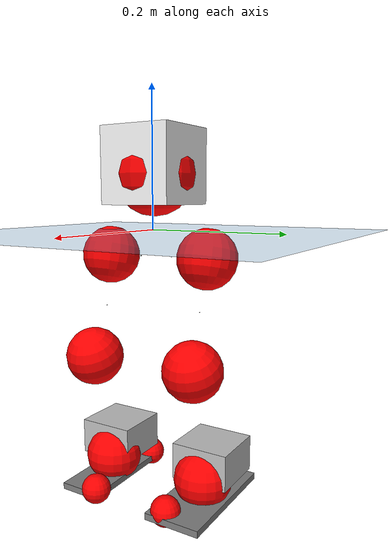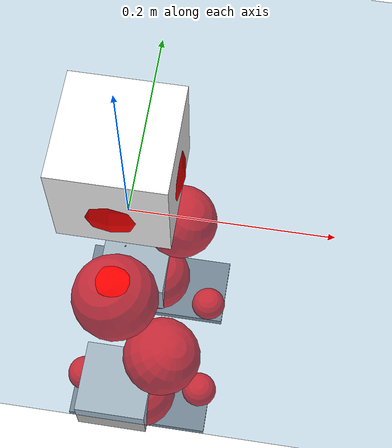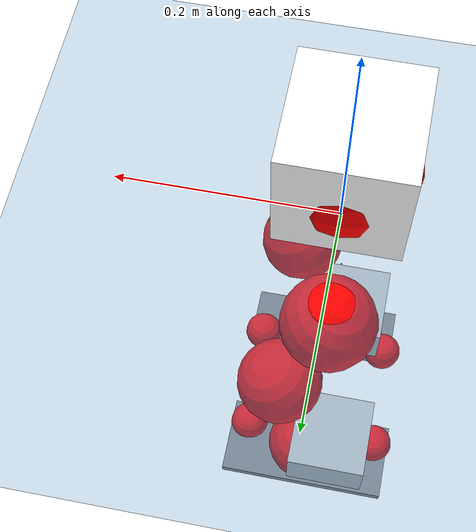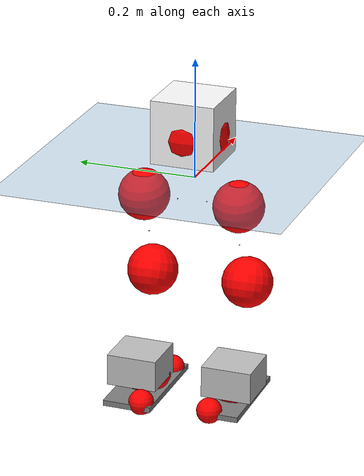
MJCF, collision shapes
<mujoco model="pi_12dof_release_v1">
  <compiler angle="radian" assetdir="assets" balanceinertia="true" inertiafromgeom="false"/>

  <option timestep="0.005" density="1.2" viscosity="2e-05"/>

  <size nkey="1"/>

  <visual>
    <quality shadowsize="8192"/>
    <map shadowclip="0.5"/>
  </visual>

  <default>
    <default class="/">
      <joint armature="0.01" damping="0.01" frictionloss="0.01"/>
      <geom contype="0" conaffinity="0" group="1" solref="-1000 -80"/>
      <site size="0.01 0.005 0.005" group="5"/>
      <general forcelimited="true" biastype="affine" gainprm="20" biasprm="0 -20 -0.5"/>
      <default class="foot">
        <geom size="0.0845 0.036 0.005" type="box" condim="6" group="4" priority="1" friction="0.9 0.2 0.2" solimp="0.015 1 0.005"/>
      </default>
      <default class="reward_collision_sphere">
        <geom group="5" rgba="1 0 0 1"/>
      </default>
    </default>
  </default>

  <asset>
    <texture type="skybox" colorspace="auto" name="//unnamed_texture_0" builtin="gradient" rgb1="0.95 0.95 0.95" rgb2="0.95 0.95 0.95" width="100" height="600"/>
    <texture type="2d" colorspace="auto" name="texplane" builtin="checker" rgb1="0.345 0.575 0.748" rgb2="0.345 0.575 0.748" markrgb="1 1 1" width="512" height="512"/>
    <material name="MatPlane" class="/" texture="texplane" texuniform="true" texrepeat="2 2" specular="0.9"/>
    <mesh name="baselink_1" class="/" file="baselink_1.STL"/>
    <mesh name="r_hip_pitch_link" class="/" file="r_hip_pitch_link.STL"/>
    <mesh name="r_hip_roll_link" class="/" file="r_hip_roll_link.STL"/>
    <mesh name="r_thigh_link" class="/" file="r_thigh_link.STL"/>
    <mesh name="r_calf_link" class="/" file="r_calf_link.STL"/>
    <mesh name="r_ankle_pitch_link" class="/" file="r_ankle_pitch_link.STL"/>
    <mesh name="r_ankle_roll_link" class="/" file="r_ankle_roll_link.STL"/>
    <mesh name="l_hip_pitch_link" class="/" file="l_hip_pitch_link.STL"/>
    <mesh name="l_hip_roll_link" class="/" file="l_hip_roll_link.STL"/>
    <mesh name="l_thigh_link" class="/" file="l_thigh_link.STL"/>
    <mesh name="l_calf_link" class="/" file="l_calf_link.STL"/>
    <mesh name="l_ankle_pitch_link" class="/" file="l_ankle_pitch_link.STL"/>
    <mesh name="l_ankle_roll_link" class="/" file="l_ankle_roll_link.STL"/>
  </asset>

  <worldbody>
    <geom name="floor" class="/" size="100 100 0.125" type="plane" group="0" material="MatPlane"/>
    <light name="toplight_shadow" class="/" pos="0 0 5" dir="0.0990148 0.0990148 -0.990148" type="directional" ambient="0.04 0.04 0.04" diffuse="0.55 0.55 0.55" specular="0.12 0.12 0.12"/>
    <light name="toplight_fill" class="/" pos="0 0 5" dir="0.0990148 0.0990148 -0.990148" type="directional" castshadow="false" ambient="0.04 0.04 0.04" diffuse="0.3 0.3 0.3" specular="0.08 0.08 0.08"/>
    <body name="trunk" pos="-0.00203483 0.00238884 -0.000617475" quat="0.999999 0.00058283 0.00010253 -0.00110169">
      <inertial pos="0.00196731 -0.00348245 0.0452306" quat="0.699026 0.012179 0.0148257 0.714839" mass="2.69519" diaginertia="0.0138545 0.00915358 0.0071961"/>
      <joint name="//unnamed_joint_0" type="free"/>
      <geom name="//unnamed_geom_1" class="/" type="mesh" density="0" rgba="1 1 1 1" mesh="baselink_1"/>
      <geom name="//unnamed_geom_2" class="/" size="0.0533869 0.0533869 0.0533869" pos="0 0 0.0894407" type="box" rgba="1 1 1 1"/>
      <geom name="//unnamed_geom_3" class="reward_collision_sphere" size="0.0587256" pos="0 0 0.0782606"/>
      <site name="imu" class="/" pos="0.0128679 -0.00853198 0.0167383" size="0.0106774"/>
      <camera name="track" class="/" pos="0 -2.0085 0" quat="0.707107 0.707107 0 0" mode="trackcom"/>
      <camera name="ego_camera" class="/" pos="0.0810714 0 0.201242" quat="-0.5 -0.5 0.5 0.5"/>
      <body name="r_hip_pitch_link" pos="0.000966788 -0.0236885 -0.0378789" quat="0.992174 0.000329936 -0.124864 -0.000622309">
        <inertial pos="0.00385354 -0.0583572 -0.000292989" quat="-0.0208639 0.704842 -0.0312334 0.708369" mass="0.438157" diaginertia="0.000155936 0.000100388 0.00014278"/>
        <joint name="r_hip_pitch_joint" class="/" pos="0 0 0" axis="-0.00242755 -0.999972 0.00703118" range="-1.80589 1.26077" armature="0.0106753" damping="0" frictionloss="0.0108279"/>
        <geom name="//unnamed_geom_4" class="/" type="mesh" density="0" rgba="0.75294 0.75294 0.75294 1" mesh="r_hip_pitch_link"/>
        <geom name="//unnamed_geom_5" class="/" size="0.000533869 0.000533869 0.000533869" type="box" rgba="0.75294 0.75294 0.75294 1"/>
        <body name="r_hip_roll_link" pos="-0.000378945 -0.0548663 -0.00103975" quat="0.999999 0.00024959 0.000277356 0.00104814">
          <inertial pos="-0.00164227 0.00128836 -0.0641277" quat="0.70746 -0.0708968 -0.0770533 0.698954" mass="0.458562" diaginertia="0.000474814 0.000275921 0.000218511"/>
          <joint name="r_hip_roll_joint" class="/" pos="0 0 0" axis="-0.999986 0.00513666 -0.000784712" range="-0.0849364 0.461059" armature="0.011823" damping="0.00194347" frictionloss="0.0106741"/>
          <geom name="//unnamed_geom_6" class="/" type="mesh" density="0" rgba="0.75294 0.75294 0.75294 1" mesh="r_hip_roll_link"/>
          <geom name="//unnamed_geom_7" class="/" size="0.000533869 0.000533869 0.000533869" type="box" rgba="0.75294 0.75294 0.75294 1"/>
          <geom name="//unnamed_geom_8" class="reward_collision_sphere" size="0.0427095"/>
          <body name="r_thigh_link" pos="-0.000529007 0.00421762 -0.0768056" quat="1 1.72006e-05 -2.24247e-05 3.0736e-05">
            <inertial pos="0.0021203 -0.00185982 -0.0529637" quat="0.731166 0.682115 0.00207077 0.0105371" mass="0.140895" diaginertia="0.00018772 9.71145e-05 0.000104217"/>
            <joint name="r_thigh_joint" class="/" pos="0 0 0" axis="-0.00700725 0.00119756 -0.999975" stiffness="0.0224871" range="-0.300309 0.53058" armature="0.0103698" damping="0.00593698" frictionloss="0.00959062"/>
            <geom name="//unnamed_geom_9" class="/" type="mesh" density="0" rgba="0.75294 0.75294 0.75294 1" mesh="r_thigh_link"/>
            <geom name="//unnamed_geom_10" class="/" size="0.000533869 0.000533869 0.000533869" type="box" rgba="0.75294 0.75294 0.75294 1"/>
            <body name="r_calf_link" pos="0.00398775 -0.00672414 -0.0773656" quat="0.947628 -0.000200045 0.319377 -0.000175587">
              <inertial pos="-0.00378586 0.00189326 -0.0753499" quat="0.999964 -0.00687828 -0.00305363 0.00389685" mass="0.973309" diaginertia="0.0049745 0.00340939 0.000292036"/>
              <joint name="r_calf_joint" class="/" pos="0 0 0" axis="0.0160757 -0.999837 0.00819631" range="-1.66946 0.64244" armature="0.0115458" damping="0" frictionloss="0.00960851"/>
              <geom name="//unnamed_geom_11" class="/" type="mesh" density="0" rgba="0.75294 0.75294 0.75294 1" mesh="r_calf_link"/>
              <geom name="//unnamed_geom_12" class="/" size="0.000533869 0.000533869 0.000533869" type="box" rgba="0.75294 0.75294 0.75294 1"/>
              <geom name="//unnamed_geom_13" class="reward_collision_sphere" size="0.0427095"/>
              <body name="r_ankle_pitch_link" pos="0.000571827 0.000804851 -0.155592" quat="0.980075 -4.80882e-05 -0.198629 -0.000133852">
                <inertial pos="0.00340906 -0.00110614 0.00219922" quat="0.00264443 0.707177 -0.00277742 0.707026" mass="0.220883" diaginertia="0.000453921 0.000239553 0.000216053"/>
                <joint name="r_ankle_pitch_joint" class="/" pos="0 0 0" axis="0.000721973 -0.999992 -0.00388428" range="-1.25206 0.507789" armature="0.011332" damping="0.0176917" frictionloss="0.0106214"/>
                <geom name="//unnamed_geom_14" class="/" type="mesh" density="0" rgba="0.75294 0.75294 0.75294 1" mesh="r_ankle_pitch_link"/>
                <geom name="//unnamed_geom_15" class="/" size="0.0416418 0.0427095 0.0266934" type="box" rgba="0.75294 0.75294 0.75294 1"/>
                <body name="r_ankle_roll_link" pos="0.0808383 0.00577797 -0.0016283" quat="0.999998 -0.00135611 5.90054e-05 0.0012422">
                  <inertial pos="-0.0304034 -0.000463132 -0.0174157" quat="0.565135 0.431755 0.437436 0.550327" mass="0.626386" diaginertia="0.00166645 0.00100881 0.000460871"/>
                  <joint name="r_ankle_roll_joint" class="/" pos="0 0 0" axis="-0.99982 -0.0156886 -0.0107061" range="-0.162146 0.115479" armature="0.0120561" damping="0" frictionloss="0.00964584"/>
                  <geom name="//unnamed_geom_16" class="/" type="mesh" density="0" rgba="0.75294 0.75294 0.75294 1" mesh="r_ankle_roll_link"/>
                  <geom name="//unnamed_geom_17" class="/" type="mesh" rgba="0.75294 0.75294 0.75294 1" mesh="r_ankle_roll_link"/>
                  <geom name="right_foot" class="foot" size="0.0844772 0.0321546 0.00467098" pos="-0.0551286 0 -0.0491924"/>
                  <geom name="//unnamed_geom_19" class="reward_collision_sphere" size="0.0427095" pos="-0.0540476 0 -0.0223602"/>
                  <geom name="//unnamed_geom_20" class="reward_collision_sphere" size="0.0213548" pos="0.0162143 0.020085 -0.0447203"/>
                  <geom name="//unnamed_geom_21" class="reward_collision_sphere" size="0.0213548" pos="-0.129714 0.020085 -0.0447203"/>
                  <site name="right_foot" class="foot" pos="-0.0551286 0 -0.0491924" size="0.0106774"/>
                </body>
              </body>
            </body>
          </body>
        </body>
      </body>
      <body name="l_hip_pitch_link" pos="-0.00529845 0.0243749 -0.0375605" quat="0.99224 -0.000154931 -0.124335 -0.000968785">
        <inertial pos="-0.00207422 0.0589745 -0.000417054" quat="-0.0444504 0.701613 0.0323878 0.710433" mass="0.467304" diaginertia="0.000185038 0.000108524 0.000180865"/>
        <joint name="l_hip_pitch_joint" class="/" pos="0 0 0" axis="0.0232783 0.999705 -0.00694096" stiffness="0.0155177" range="-1.19597 1.79312" armature="0.0124473" damping="0.0295307" frictionloss="0.0116864"/>
        <geom name="//unnamed_geom_22" class="/" type="mesh" density="0" rgba="0.75294 0.75294 0.75294 1" mesh="l_hip_pitch_link"/>
        <geom name="//unnamed_geom_23" class="/" size="0.000533869 0.000533869 0.000533869" type="box" rgba="0.75294 0.75294 0.75294 1"/>
        <body name="l_hip_roll_link" pos="0.00135942 0.0587541 -0.000406589" quat="0.999999 5.21706e-05 0.00122106 -6.61892e-05">
          <inertial pos="0.00151406 -0.00318564 -0.0682579" quat="0.701009 -0.0746758 -0.0779055 0.70494" mass="0.487114" diaginertia="0.000489113 0.000284958 0.000236123"/>
          <joint name="l_hip_roll_joint" class="/" pos="0 0 0" axis="-0.999974 0.00702318 0.00154398" range="-0.536406 0.153288" armature="0.0100192" damping="0.00124913" frictionloss="0.0099807"/>
          <geom name="//unnamed_geom_24" class="/" type="mesh" density="0" rgba="0.75294 0.75294 0.75294 1" mesh="l_hip_roll_link"/>
          <geom name="//unnamed_geom_25" class="/" size="0.000533869 0.000533869 0.000533869" type="box" rgba="0.75294 0.75294 0.75294 1"/>
          <geom name="//unnamed_geom_26" class="reward_collision_sphere" size="0.0427095"/>
          <body name="l_thigh_link" pos="-0.000828292 -0.00156391 -0.0732786" quat="0.999998 -0.000288646 -0.00185697 0.000805913">
            <inertial pos="0.0024409 -0.00127554 -0.0579378" quat="0.671989 0.740536 -0.0028221 -0.00539973" mass="0.139824" diaginertia="0.000183684 9.31893e-05 9.95013e-05"/>
            <joint name="l_thigh_joint" class="/" pos="0 0 0" axis="0.0111086 -0.00534712 -0.999924" range="-0.541484 0.26588" armature="0.0101835" damping="0.0111872" frictionloss="0.0112506"/>
            <geom name="//unnamed_geom_27" class="/" type="mesh" density="0" rgba="0.75294 0.75294 0.75294 1" mesh="l_thigh_link"/>
            <geom name="//unnamed_geom_28" class="/" size="0.000533869 0.000533869 0.000533869" type="box" rgba="0.75294 0.75294 0.75294 1"/>
            <body name="l_calf_link" pos="0.00288855 0.0022561 -0.0812114" quat="0.947896 0.000876665 0.318578 0.000467769">
              <inertial pos="0.000427308 0.00524436 -0.0770417" quat="0.999873 0.0143886 -0.00254299 -0.00630053" mass="0.967619" diaginertia="0.00513709 0.00350587 0.000299978"/>
              <joint name="l_calf_joint" class="/" pos="0 0 0" axis="-0.00371823 0.999949 0.00942161" stiffness="0.00143904" range="-0.644312 1.69952" armature="0.0102999" damping="0.0111411" frictionloss="0.011339"/>
              <geom name="//unnamed_geom_29" class="/" type="mesh" density="0" rgba="0.75294 0.75294 0.75294 1" mesh="l_calf_link"/>
              <geom name="//unnamed_geom_30" class="/" size="0.000533869 0.000533869 0.000533869" type="box" rgba="0.75294 0.75294 0.75294 1"/>
              <geom name="//unnamed_geom_31" class="reward_collision_sphere" size="0.0427095"/>
              <body name="l_ankle_pitch_link" pos="0.00211527 -0.000348706 -0.158952" quat="0.980294 -0.000157599 -0.197546 -0.000457633">
                <inertial pos="0.00815207 -0.00137989 0.00240562" quat="-0.00728023 0.692681 -0.00183702 0.721205" mass="0.205233" diaginertia="0.000449677 0.000220919 0.000195758"/>
                <joint name="l_ankle_pitch_joint" class="/" pos="0 0 0" axis="0.0124636 0.999922 0.000345417" stiffness="0.00966897" range="-0.496522 1.3179" armature="0.00916564" damping="0.0127913" frictionloss="0.0118734"/>
                <geom name="//unnamed_geom_32" class="/" type="mesh" density="0" rgba="0.75294 0.75294 0.75294 1" mesh="l_ankle_pitch_link"/>
                <geom name="//unnamed_geom_33" class="/" size="0.0416418 0.0427095 0.0266934" type="box" rgba="0.75294 0.75294 0.75294 1"/>
                <body name="l_ankle_roll_link" pos="0.0804911 -0.000520179 -0.000666821" quat="1 -0.000153181 -5.44767e-05 0.000276635">
                  <inertial pos="-0.0239154 0.00396729 -0.0191293" quat="0.559427 0.432141 0.43451 0.558118" mass="0.612331" diaginertia="0.00163653 0.00101829 0.00048684"/>
                  <joint name="l_ankle_roll_joint" class="/" pos="0 0 0" axis="-0.999907 0.0136417 -0.000322541" range="-0.107127 0.135783" armature="0.0116781" damping="0" frictionloss="0.00969673"/>
                  <geom name="//unnamed_geom_34" class="/" type="mesh" density="0" rgba="0.75294 0.75294 0.75294 1" mesh="l_ankle_roll_link"/>
                  <geom name="//unnamed_geom_35" class="/" type="mesh" rgba="0.75294 0.75294 0.75294 1" mesh="l_ankle_roll_link"/>
                  <geom name="left_foot" class="foot" size="0.0912545 0.0414434 0.00478622" pos="-0.0551286 0 -0.0491924"/>
                  <geom name="//unnamed_geom_37" class="reward_collision_sphere" size="0.0427095" pos="-0.0540476 0 -0.0223602"/>
                  <geom name="//unnamed_geom_38" class="reward_collision_sphere" size="0.0213548" pos="0.0162143 -0.020085 -0.0447203"/>
                  <geom name="//unnamed_geom_39" class="reward_collision_sphere" size="0.0213548" pos="-0.129714 -0.020085 -0.0447203"/>
                  <site name="left_foot" class="foot" pos="-0.0551286 0 -0.0491924" size="0.0106774"/>
                </body>
              </body>
            </body>
          </body>
        </body>
      </body>
    </body>
  </worldbody>

  <contact>
    <pair class="/" geom1="floor" geom2="right_foot" name="//unnamed_contact_1"/>
    <pair class="/" geom1="floor" geom2="left_foot" name="//unnamed_contact_0"/>
  </contact>

  <actuator>
    <general name="r_hip_pitch_joint" class="/" joint="r_hip_pitch_joint" forcerange="-24.3098 24.3098" gainprm="22.0446" biasprm="0 -22.0446 -0.515576"/>
    <general name="r_hip_roll_joint" class="/" joint="r_hip_roll_joint" forcerange="-20.4243 20.4243" gainprm="22.0446" biasprm="0 -22.0446 -0.515576"/>
    <general name="r_thigh_joint" class="/" joint="r_thigh_joint" forcerange="-20.4776 20.4776" gainprm="22.0446" biasprm="0 -22.0446 -0.515576"/>
    <general name="r_calf_joint" class="/" joint="r_calf_joint" forcerange="-19.4303 19.4303" gainprm="22.0446" biasprm="0 -22.0446 -0.515576"/>
    <general name="r_ankle_pitch_joint" class="/" joint="r_ankle_pitch_joint" forcerange="-20.2323 20.2323" gainprm="22.0446" biasprm="0 -22.0446 -0.515576"/>
    <general name="r_ankle_roll_joint" class="/" joint="r_ankle_roll_joint" forcerange="-24.5458 24.5458" gainprm="22.0446" biasprm="0 -22.0446 -0.515576"/>
    <general name="l_hip_pitch_joint" class="/" joint="l_hip_pitch_joint" forcerange="-22.7091 22.7091" gainprm="22.0446" biasprm="0 -22.0446 -0.515576"/>
    <general name="l_hip_roll_joint" class="/" joint="l_hip_roll_joint" forcerange="-23.5121 23.5121" gainprm="22.0446" biasprm="0 -22.0446 -0.515576"/>
    <general name="l_thigh_joint" class="/" joint="l_thigh_joint" forcerange="-24.308 24.308" gainprm="22.0446" biasprm="0 -22.0446 -0.515576"/>
    <general name="l_calf_joint" class="/" joint="l_calf_joint" forcerange="-22.7768 22.7768" gainprm="22.0446" biasprm="0 -22.0446 -0.515576"/>
    <general name="l_ankle_pitch_joint" class="/" joint="l_ankle_pitch_joint" forcerange="-23.6068 23.6068" gainprm="22.0446" biasprm="0 -22.0446 -0.515576"/>
    <general name="l_ankle_roll_joint" class="/" joint="l_ankle_roll_joint" forcerange="-23.3923 23.3923" gainprm="22.0446" biasprm="0 -22.0446 -0.515576"/>
  </actuator>

  <sensor>
    <gyro site="imu" name="imu_angular_velocity"/>
    <velocimeter site="imu" name="imu_linear_velocity"/>
    <framelinvel objtype="site" objname="left_foot" name="left_foot_global_linear_velocity"/>
    <framelinvel objtype="site" objname="right_foot" name="right_foot_global_linear_velocity"/>
  </sensor>

  <keyframe>
    <key name="home" qpos="0 0 0.291 1 0 0 0 0.4 0 0 -0.8 0.4 0 -0.4 0 0 0.8 -0.4 0"/>
  </keyframe>
</mujoco>
